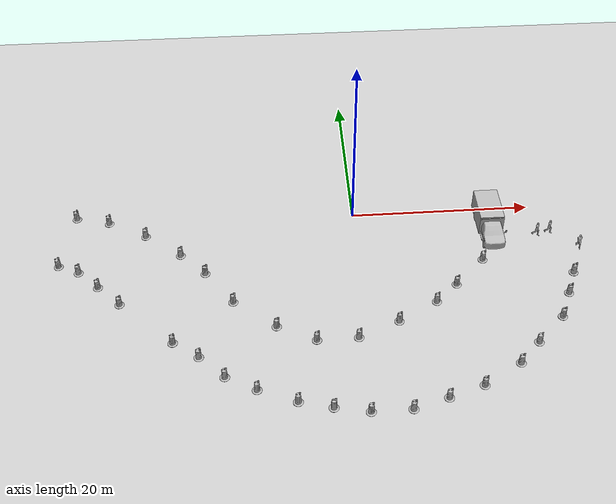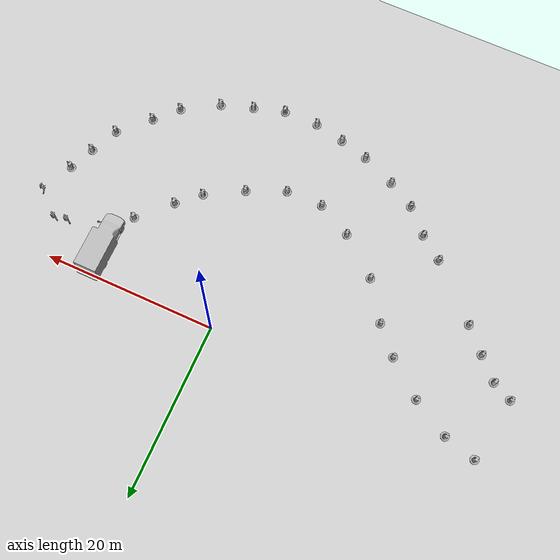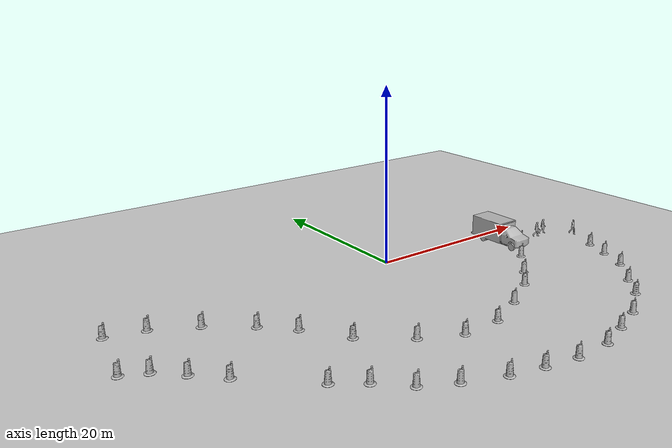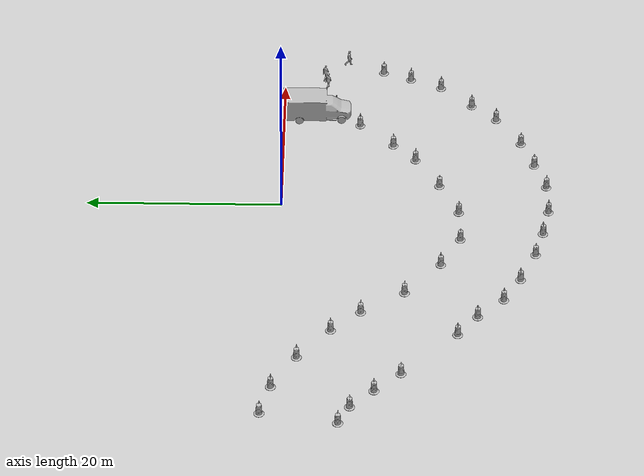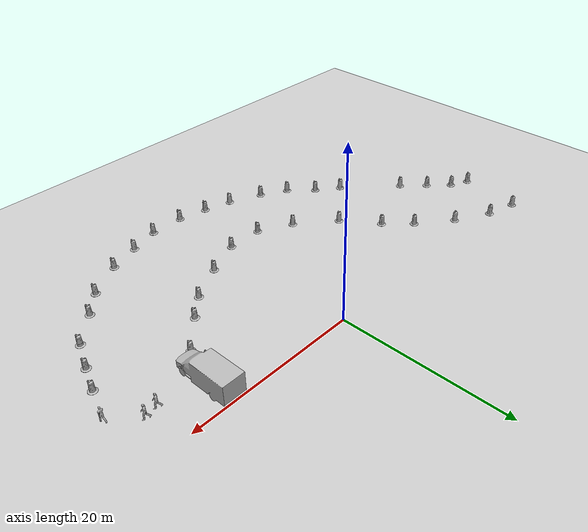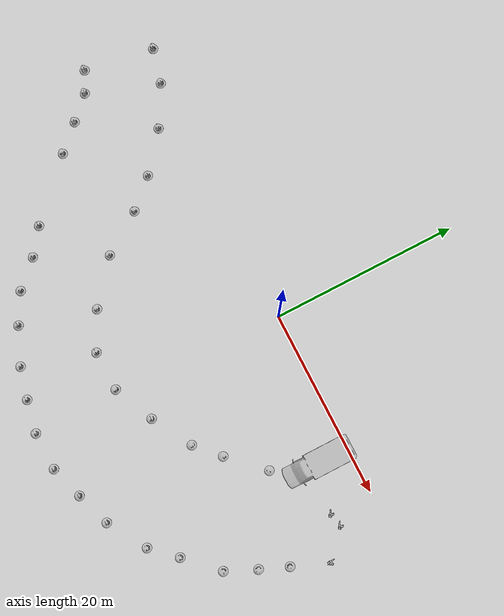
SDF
<sdf version="1.6">
 <world name="default">
  <scene>
   <sky><clouds><speed>12</speed></clouds></sky>
   <ambient>0.4 0.4 0.4 1</ambient>
   <background>0.7 0.7 0.7 1</background>
   <shadows>1</shadows>
  </scene>
  <light name="sun" type="directional">
   <pose>0 0 10 0 -0 0</pose>
   <diffuse>0.8 0.8 0.8 1</diffuse>
   <specular>0.2 0.2 0.2 1</specular>
   <attenuation>
    <range>1000</range>
    <constant>0.9</constant>
    <linear>0.01</linear>
    <quadratic>0.001</quadratic>
   </attenuation>
   <direction>-0.5 0.1 -0.9</direction>
  </light>
  <model name="ground_plane">
   <static>1</static>
   <link name="link">
    <collision name="collision">
     <geometry><plane><normal>0 0 1</normal><size>100 100</size></plane></geometry>
     <surface>
      <contact><collide_bitmask>65535</collide_bitmask></contact>
      <friction><ode><mu>100</mu><mu2>50</mu2></ode></friction>
     </surface>
    </collision>
    <visual name="visual">
     <cast_shadows>0</cast_shadows>
     <geometry><plane><normal>0 0 1</normal><size>100 100</size></plane></geometry>
     <material>
      <script><uri>file://media/materials/scripts/gazebo.material</uri><name>Gazebo/Grey</name></script>
     </material>
    </visual>
   </link>
  </model>
  <gravity>0 0 -9.8</gravity>
  <magnetic_field>6e-06 2.3e-05 -4.2e-05</magnetic_field>
  <atmosphere type="adiabatic"/>
  <physics name="default_physics" default="0" type="ode">
   <max_step_size>0.001</max_step_size>
   <real_time_factor>1</real_time_factor>
   <real_time_update_rate>1000</real_time_update_rate>
  </physics>
  <spherical_coordinates>
   <surface_model>EARTH_WGS84</surface_model>
   <latitude_deg>0</latitude_deg>
   <longitude_deg>0</longitude_deg>
   <elevation>0</elevation>
   <heading_deg>0</heading_deg>
  </spherical_coordinates>
  <model name="Construction Barrel">
   <link name="link">
    <inertial>
     <pose>0 0 0.4 0 -0 0</pose>
     <mass>500</mass>
     <inertia><ixx>51.2096</ixx><iyy>51.2096</iyy><izz>25</izz><ixy>0</ixy><ixz>0</ixz><iyz>0</iyz></inertia>
    </inertial>
    <collision name="collision">
     <geometry><mesh><uri>model://construction_barrel/meshes/construction_barrel.dae</uri></mesh></geometry>
    </collision>
    <visual name="visual">
     <geometry><mesh><uri>model://construction_barrel/meshes/construction_barrel.dae</uri></mesh></geometry>
    </visual>
   </link>
   <pose>-31.1944 1.41582 -2e-06 6e-06 -4e-06 -2.3e-05</pose>
  </model>
  <model name="Construction Barrel_0">
   <link name="link">
    <inertial>
     <pose>0 0 0.4 0 -0 0</pose>
     <mass>500</mass>
     <inertia><ixx>51.2096</ixx><iyy>51.2096</iyy><izz>25</izz><ixy>0</ixy><ixz>0</ixz><iyz>0</iyz></inertia>
    </inertial>
    <collision name="collision">
     <geometry><mesh><uri>model://construction_barrel/meshes/construction_barrel.dae</uri></mesh></geometry>
    </collision>
    <visual name="visual">
     <geometry><mesh><uri>model://construction_barrel/meshes/construction_barrel.dae</uri></mesh></geometry>
    </visual>
   </link>
   <pose>-27.4893 0.429471 -2e-06 6e-06 -4e-06 -2.2e-05</pose>
  </model>
  <model name="Construction Barrel_1">
   <link name="link">
    <inertial>
     <pose>0 0 0.4 0 -0 0</pose>
     <mass>500</mass>
     <inertia><ixx>51.2096</ixx><iyy>51.2096</iyy><izz>25</izz><ixy>0</ixy><ixz>0</ixz><iyz>0</iyz></inertia>
    </inertial>
    <collision name="collision">
     <geometry><mesh><uri>model://construction_barrel/meshes/construction_barrel.dae</uri></mesh></geometry>
    </collision>
    <visual name="visual">
     <geometry><mesh><uri>model://construction_barrel/meshes/construction_barrel.dae</uri></mesh></geometry>
    </visual>
   </link>
   <pose>-23.2751 -1.96116 -2e-06 6e-06 -4e-06 -2.1e-05</pose>
  </model>
  <model name="Construction Barrel_2">
   <link name="link">
    <inertial>
     <pose>0 0 0.4 0 -0 0</pose>
     <mass>500</mass>
     <inertia><ixx>51.2096</ixx><iyy>51.2096</iyy><izz>25</izz><ixy>0</ixy><ixz>0</ixz><iyz>0</iyz></inertia>
    </inertial>
    <collision name="collision">
     <geometry><mesh><uri>model://construction_barrel/meshes/construction_barrel.dae</uri></mesh></geometry>
    </collision>
    <visual name="visual">
     <geometry><mesh><uri>model://construction_barrel/meshes/construction_barrel.dae</uri></mesh></geometry>
    </visual>
   </link>
   <pose>-19.3142 -5.21222 -2e-06 6e-06 -4e-06 -2e-05</pose>
  </model>
  <model name="Construction Barrel_1_clone">
   <link name="link">
    <inertial>
     <pose>0 0 0.4 0 -0 0</pose>
     <mass>500</mass>
     <inertia><ixx>51.2096</ixx><iyy>51.2096</iyy><izz>25</izz><ixy>0</ixy><ixz>0</ixz><iyz>0</iyz></inertia>
    </inertial>
    <collision name="collision">
     <geometry><mesh><uri>model://construction_barrel/meshes/construction_barrel.dae</uri></mesh></geometry>
    </collision>
    <visual name="visual">
     <geometry><mesh><uri>model://construction_barrel/meshes/construction_barrel.dae</uri></mesh></geometry>
    </visual>
   </link>
   <pose>-16.5963 -8.13898 -2e-06 6e-06 -4e-06 -2e-05</pose>
  </model>
  <model name="Construction Barrel_1_clone_0">
   <link name="link">
    <inertial>
     <pose>0 0 0.4 0 -0 0</pose>
     <mass>500</mass>
     <inertia><ixx>51.2096</ixx><iyy>51.2096</iyy><izz>25</izz><ixy>0</ixy><ixz>0</ixz><iyz>0</iyz></inertia>
    </inertial>
    <collision name="collision">
     <geometry><mesh><uri>model://construction_barrel/meshes/construction_barrel.dae</uri></mesh></geometry>
    </collision>
    <visual name="visual">
     <geometry><mesh><uri>model://construction_barrel/meshes/construction_barrel.dae</uri></mesh></geometry>
    </visual>
   </link>
   <pose>-13.64 -12.4685 -2e-06 6e-06 -4e-06 -2e-05</pose>
  </model>
  <model name="Construction Barrel_1_clone_1">
   <link name="link">
    <inertial>
     <pose>0 0 0.4 0 -0 0</pose>
     <mass>500</mass>
     <inertia><ixx>51.2096</ixx><iyy>51.2096</iyy><izz>25</izz><ixy>0</ixy><ixz>0</ixz><iyz>0</iyz></inertia>
    </inertial>
    <collision name="collision">
     <geometry><mesh><uri>model://construction_barrel/meshes/construction_barrel.dae</uri></mesh></geometry>
    </collision>
    <visual name="visual">
     <geometry><mesh><uri>model://construction_barrel/meshes/construction_barrel.dae</uri></mesh></geometry>
    </visual>
   </link>
   <pose>-32.4126 -6.0217 -2e-06 6e-06 -4e-06 -1.9e-05</pose>
  </model>
  <model name="Construction Barrel_1_clone_2">
   <link name="link">
    <inertial>
     <pose>0 0 0.4 0 -0 0</pose>
     <mass>500</mass>
     <inertia><ixx>51.2096</ixx><iyy>51.2096</iyy><izz>25</izz><ixy>0</ixy><ixz>0</ixz><iyz>0</iyz></inertia>
    </inertial>
    <collision name="collision">
     <geometry><mesh><uri>model://construction_barrel/meshes/construction_barrel.dae</uri></mesh></geometry>
    </collision>
    <visual name="visual">
     <geometry><mesh><uri>model://construction_barrel/meshes/construction_barrel.dae</uri></mesh></geometry>
    </visual>
   </link>
   <pose>-30.1669 -7.12313 -2e-06 6e-06 -4e-06 -1.9e-05</pose>
  </model>
  <model name="Construction Barrel_1_clone_3">
   <link name="link">
    <inertial>
     <pose>0 0 0.4 0 -0 0</pose>
     <mass>500</mass>
     <inertia><ixx>51.2096</ixx><iyy>51.2096</iyy><izz>25</izz><ixy>0</ixy><ixz>0</ixz><iyz>0</iyz></inertia>
    </inertial>
    <collision name="collision">
     <geometry><mesh><uri>model://construction_barrel/meshes/construction_barrel.dae</uri></mesh></geometry>
    </collision>
    <visual name="visual">
     <geometry><mesh><uri>model://construction_barrel/meshes/construction_barrel.dae</uri></mesh></geometry>
    </visual>
   </link>
   <pose>-27.9078 -9.42812 -2e-06 6e-06 -4e-06 -1.9e-05</pose>
  </model>
  <model name="Construction Barrel_1_clone_4">
   <link name="link">
    <inertial>
     <pose>0 0 0.4 0 -0 0</pose>
     <mass>500</mass>
     <inertia><ixx>51.2096</ixx><iyy>51.2096</iyy><izz>25</izz><ixy>0</ixy><ixz>0</ixz><iyz>0</iyz></inertia>
    </inertial>
    <collision name="collision">
     <geometry><mesh><uri>model://construction_barrel/meshes/construction_barrel.dae</uri></mesh></geometry>
    </collision>
    <visual name="visual">
     <geometry><mesh><uri>model://construction_barrel/meshes/construction_barrel.dae</uri></mesh></geometry>
    </visual>
   </link>
   <pose>-25.4558 -12.0164 -2e-06 6e-06 -4e-06 -1.9e-05</pose>
  </model>
  <model name="Construction Barrel_1_clone_5">
   <link name="link">
    <inertial>
     <pose>0 0 0.4 0 -0 0</pose>
     <mass>500</mass>
     <inertia><ixx>51.2096</ixx><iyy>51.2096</iyy><izz>25</izz><ixy>0</ixy><ixz>0</ixz><iyz>0</iyz></inertia>
    </inertial>
    <collision name="collision">
     <geometry><mesh><uri>model://construction_barrel/meshes/construction_barrel.dae</uri></mesh></geometry>
    </collision>
    <visual name="visual">
     <geometry><mesh><uri>model://construction_barrel/meshes/construction_barrel.dae</uri></mesh></geometry>
    </visual>
   </link>
   <pose>-19.7495 -17.5857 -2e-06 6e-06 -4e-06 -1.9e-05</pose>
  </model>
  <model name="Construction Barrel_1_clone_6">
   <link name="link">
    <inertial>
     <pose>0 0 0.4 0 -0 0</pose>
     <mass>500</mass>
     <inertia><ixx>51.2096</ixx><iyy>51.2096</iyy><izz>25</izz><ixy>0</ixy><ixz>0</ixz><iyz>0</iyz></inertia>
    </inertial>
    <collision name="collision">
     <geometry><mesh><uri>model://construction_barrel/meshes/construction_barrel.dae</uri></mesh></geometry>
    </collision>
    <visual name="visual">
     <geometry><mesh><uri>model://construction_barrel/meshes/construction_barrel.dae</uri></mesh></geometry>
    </visual>
   </link>
   <pose>-17.0943 -19.6017 -2e-06 6e-06 -4e-06 -1.9e-05</pose>
  </model>
  <model name="Construction Barrel_1_clone_8">
   <link name="link">
    <inertial>
     <pose>0 0 0.4 0 -0 0</pose>
     <mass>500</mass>
     <inertia><ixx>51.2096</ixx><iyy>51.2096</iyy><izz>25</izz><ixy>0</ixy><ixz>0</ixz><iyz>0</iyz></inertia>
    </inertial>
    <collision name="collision">
     <geometry><mesh><uri>model://construction_barrel/meshes/construction_barrel.dae</uri></mesh></geometry>
    </collision>
    <visual name="visual">
     <geometry><mesh><uri>model://construction_barrel/meshes/construction_barrel.dae</uri></mesh></geometry>
    </visual>
   </link>
   <pose>-9.24704 -16.1333 -2e-06 6e-06 -4e-06 -1.9e-05</pose>
  </model>
  <model name="Construction Barrel_1_clone_7">
   <link name="link">
    <inertial>
     <pose>0 0 0.4 0 -0 0</pose>
     <mass>500</mass>
     <inertia><ixx>51.2096</ixx><iyy>51.2096</iyy><izz>25</izz><ixy>0</ixy><ixz>0</ixz><iyz>0</iyz></inertia>
    </inertial>
    <collision name="collision">
     <geometry><mesh><uri>model://construction_barrel/meshes/construction_barrel.dae</uri></mesh></geometry>
    </collision>
    <visual name="visual">
     <geometry><mesh><uri>model://construction_barrel/meshes/construction_barrel.dae</uri></mesh></geometry>
    </visual>
   </link>
   <pose>-14.5323 -22.2554 -2e-06 6e-06 -4e-06 -1.8e-05</pose>
  </model>
  <model name="Construction Barrel_1_clone_9">
   <link name="link">
    <inertial>
     <pose>0 0 0.4 0 -0 0</pose>
     <mass>500</mass>
     <inertia><ixx>51.2096</ixx><iyy>51.2096</iyy><izz>25</izz><ixy>0</ixy><ixz>0</ixz><iyz>0</iyz></inertia>
    </inertial>
    <collision name="collision">
     <geometry><mesh><uri>model://construction_barrel/meshes/construction_barrel.dae</uri></mesh></geometry>
    </collision>
    <visual name="visual">
     <geometry><mesh><uri>model://construction_barrel/meshes/construction_barrel.dae</uri></mesh></geometry>
    </visual>
   </link>
   <pose>-11.4295 -24.0213 -2e-06 6e-06 -4e-06 -2.6e-05</pose>
  </model>
  <model name="Construction Barrel_1_clone_10">
   <link name="link">
    <inertial>
     <pose>0 0 0.4 0 -0 0</pose>
     <mass>500</mass>
     <inertia><ixx>51.2096</ixx><iyy>51.2096</iyy><izz>25</izz><ixy>0</ixy><ixz>0</ixz><iyz>0</iyz></inertia>
    </inertial>
    <collision name="collision">
     <geometry><mesh><uri>model://construction_barrel/meshes/construction_barrel.dae</uri></mesh></geometry>
    </collision>
    <visual name="visual">
     <geometry><mesh><uri>model://construction_barrel/meshes/construction_barrel.dae</uri></mesh></geometry>
    </visual>
   </link>
   <pose>-7.55242 -25.6931 -2e-06 6e-06 -4e-06 -1.6e-05</pose>
  </model>
  <model name="Construction Barrel_1_clone_11">
   <link name="link">
    <inertial>
     <pose>0 0 0.4 0 -0 0</pose>
     <mass>500</mass>
     <inertia><ixx>51.2096</ixx><iyy>51.2096</iyy><izz>25</izz><ixy>0</ixy><ixz>0</ixz><iyz>0</iyz></inertia>
    </inertial>
    <collision name="collision">
     <geometry><mesh><uri>model://construction_barrel/meshes/construction_barrel.dae</uri></mesh></geometry>
    </collision>
    <visual name="visual">
     <geometry><mesh><uri>model://construction_barrel/meshes/construction_barrel.dae</uri></mesh></geometry>
    </visual>
   </link>
   <pose>-4.21758 -26.5821 -2e-06 6e-06 -4e-06 -2.6e-05</pose>
  </model>
  <model name="Construction Barrel_1_clone_12">
   <link name="link">
    <inertial>
     <pose>0 0 0.4 0 -0 0</pose>
     <mass>500</mass>
     <inertia><ixx>51.2096</ixx><iyy>51.2096</iyy><izz>25</izz><ixy>0</ixy><ixz>0</ixz><iyz>0</iyz></inertia>
    </inertial>
    <collision name="collision">
     <geometry><mesh><uri>model://construction_barrel/meshes/construction_barrel.dae</uri></mesh></geometry>
    </collision>
    <visual name="visual">
     <geometry><mesh><uri>model://construction_barrel/meshes/construction_barrel.dae</uri></mesh></geometry>
    </visual>
   </link>
   <pose>-0.751617 -27.2982 -2e-06 6e-06 -4e-06 -1.6e-05</pose>
  </model>
  <model name="Construction Barrel_1_clone_13">
   <link name="link">
    <inertial>
     <pose>0 0 0.4 0 -0 0</pose>
     <mass>500</mass>
     <inertia><ixx>51.2096</ixx><iyy>51.2096</iyy><izz>25</izz><ixy>0</ixy><ixz>0</ixz><iyz>0</iyz></inertia>
    </inertial>
    <collision name="collision">
     <geometry><mesh><uri>model://construction_barrel/meshes/construction_barrel.dae</uri></mesh></geometry>
    </collision>
    <visual name="visual">
     <geometry><mesh><uri>model://construction_barrel/meshes/construction_barrel.dae</uri></mesh></geometry>
    </visual>
   </link>
   <pose>3.3025 -27.2616 -2e-06 6e-06 -4e-06 -2.6e-05</pose>
  </model>
  <model name="Construction Barrel_1_clone_14">
   <link name="link">
    <inertial>
     <pose>0 0 0.4 0 -0 0</pose>
     <mass>500</mass>
     <inertia><ixx>51.2096</ixx><iyy>51.2096</iyy><izz>25</izz><ixy>0</ixy><ixz>0</ixz><iyz>0</iyz></inertia>
    </inertial>
    <collision name="collision">
     <geometry><mesh><uri>model://construction_barrel/meshes/construction_barrel.dae</uri></mesh></geometry>
    </collision>
    <visual name="visual">
     <geometry><mesh><uri>model://construction_barrel/meshes/construction_barrel.dae</uri></mesh></geometry>
    </visual>
   </link>
   <pose>6.87565 -26.167 -2e-06 6e-06 -4e-06 -2.6e-05</pose>
  </model>
  <model name="Construction Barrel_1_clone_15">
   <link name="link">
    <inertial>
     <pose>0 0 0.4 0 -0 0</pose>
     <mass>500</mass>
     <inertia><ixx>51.2096</ixx><iyy>51.2096</iyy><izz>25</izz><ixy>0</ixy><ixz>0</ixz><iyz>0</iyz></inertia>
    </inertial>
    <collision name="collision">
     <geometry><mesh><uri>model://construction_barrel/meshes/construction_barrel.dae</uri></mesh></geometry>
    </collision>
    <visual name="visual">
     <geometry><mesh><uri>model://construction_barrel/meshes/construction_barrel.dae</uri></mesh></geometry>
    </visual>
   </link>
   <pose>10.5338 -24.9223 -2e-06 6e-06 -4e-06 -2.6e-05</pose>
  </model>
  <model name="Construction Barrel_1_clone_16">
   <link name="link">
    <inertial>
     <pose>0 0 0.4 0 -0 0</pose>
     <mass>500</mass>
     <inertia><ixx>51.2096</ixx><iyy>51.2096</iyy><izz>25</izz><ixy>0</ixy><ixz>0</ixz><iyz>0</iyz></inertia>
    </inertial>
    <collision name="collision">
     <geometry><mesh><uri>model://construction_barrel/meshes/construction_barrel.dae</uri></mesh></geometry>
    </collision>
    <visual name="visual">
     <geometry><mesh><uri>model://construction_barrel/meshes/construction_barrel.dae</uri></mesh></geometry>
    </visual>
   </link>
   <pose>14.607 -22.4607 -2e-06 6e-06 -4e-06 -1.6e-05</pose>
  </model>
  <model name="Construction Barrel_1_clone_17">
   <link name="link">
    <inertial>
     <pose>0 0 0.4 0 -0 0</pose>
     <mass>500</mass>
     <inertia><ixx>51.2096</ixx><iyy>51.2096</iyy><izz>25</izz><ixy>0</ixy><ixz>0</ixz><iyz>0</iyz></inertia>
    </inertial>
    <collision name="collision">
     <geometry><mesh><uri>model://construction_barrel/meshes/construction_barrel.dae</uri></mesh></geometry>
    </collision>
    <visual name="visual">
     <geometry><mesh><uri>model://construction_barrel/meshes/construction_barrel.dae</uri></mesh></geometry>
    </visual>
   </link>
   <pose>16.9853 -19.9398 -2e-06 6e-06 -4e-06 -2.6e-05</pose>
  </model>
  <model name="Construction Barrel_1_clone_18">
   <link name="link">
    <inertial>
     <pose>0 0 0.4 0 -0 0</pose>
     <mass>500</mass>
     <inertia><ixx>51.2096</ixx><iyy>51.2096</iyy><izz>25</izz><ixy>0</ixy><ixz>0</ixz><iyz>0</iyz></inertia>
    </inertial>
    <collision name="collision">
     <geometry><mesh><uri>model://construction_barrel/meshes/construction_barrel.dae</uri></mesh></geometry>
    </collision>
    <visual name="visual">
     <geometry><mesh><uri>model://construction_barrel/meshes/construction_barrel.dae</uri></mesh></geometry>
    </visual>
   </link>
   <pose>20.1695 -16.7317 -2e-06 6e-06 -4e-06 -2.6e-05</pose>
  </model>
  <model name="Construction Barrel_1_clone_19">
   <link name="link">
    <inertial>
     <pose>0 0 0.4 0 -0 0</pose>
     <mass>500</mass>
     <inertia><ixx>51.2096</ixx><iyy>51.2096</iyy><izz>25</izz><ixy>0</ixy><ixz>0</ixz><iyz>0</iyz></inertia>
    </inertial>
    <collision name="collision">
     <geometry><mesh><uri>model://construction_barrel/meshes/construction_barrel.dae</uri></mesh></geometry>
    </collision>
    <visual name="visual">
     <geometry><mesh><uri>model://construction_barrel/meshes/construction_barrel.dae</uri></mesh></geometry>
    </visual>
   </link>
   <pose>21.6222 -13.5108 -2e-06 6e-06 -4e-06 -2.6e-05</pose>
  </model>
  <model name="Construction Barrel_1_clone_20">
   <link name="link">
    <inertial>
     <pose>0 0 0.4 0 -0 0</pose>
     <mass>500</mass>
     <inertia><ixx>51.2096</ixx><iyy>51.2096</iyy><izz>25</izz><ixy>0</ixy><ixz>0</ixz><iyz>0</iyz></inertia>
    </inertial>
    <collision name="collision">
     <geometry><mesh><uri>model://construction_barrel/meshes/construction_barrel.dae</uri></mesh></geometry>
    </collision>
    <visual name="visual">
     <geometry><mesh><uri>model://construction_barrel/meshes/construction_barrel.dae</uri></mesh></geometry>
    </visual>
   </link>
   <pose>-5.27894 -18.187 -2e-06 6e-06 -4e-06 -1.6e-05</pose>
  </model>
  <model name="Construction Barrel_1_clone_21">
   <link name="link">
    <inertial>
     <pose>0 0 0.4 0 -0 0</pose>
     <mass>500</mass>
     <inertia><ixx>51.2096</ixx><iyy>51.2096</iyy><izz>25</izz><ixy>0</ixy><ixz>0</ixz><iyz>0</iyz></inertia>
    </inertial>
    <collision name="collision">
     <geometry><mesh><uri>model://construction_barrel/meshes/construction_barrel.dae</uri></mesh></geometry>
    </collision>
    <visual name="visual">
     <geometry><mesh><uri>model://construction_barrel/meshes/construction_barrel.dae</uri></mesh></geometry>
    </visual>
   </link>
   <pose>-1.0121 -18.1286 -2e-06 6e-06 -4e-06 -1.6e-05</pose>
  </model>
  <model name="Construction Barrel_1_clone_22">
   <link name="link">
    <inertial>
     <pose>0 0 0.4 0 -0 0</pose>
     <mass>500</mass>
     <inertia><ixx>51.2096</ixx><iyy>51.2096</iyy><izz>25</izz><ixy>0</ixy><ixz>0</ixz><iyz>0</iyz></inertia>
    </inertial>
    <collision name="collision">
     <geometry><mesh><uri>model://construction_barrel/meshes/construction_barrel.dae</uri></mesh></geometry>
    </collision>
    <visual name="visual">
     <geometry><mesh><uri>model://construction_barrel/meshes/construction_barrel.dae</uri></mesh></geometry>
    </visual>
   </link>
   <pose>3.31236 -16.2329 -2e-06 6e-06 -4e-06 -2.6e-05</pose>
  </model>
  <model name="Construction Barrel_1_clone_23">
   <link name="link">
    <inertial>
     <pose>0 0 0.4 0 -0 0</pose>
     <mass>500</mass>
     <inertia><ixx>51.2096</ixx><iyy>51.2096</iyy><izz>25</izz><ixy>0</ixy><ixz>0</ixz><iyz>0</iyz></inertia>
    </inertial>
    <collision name="collision">
     <geometry><mesh><uri>model://construction_barrel/meshes/construction_barrel.dae</uri></mesh></geometry>
    </collision>
    <visual name="visual">
     <geometry><mesh><uri>model://construction_barrel/meshes/construction_barrel.dae</uri></mesh></geometry>
    </visual>
   </link>
   <pose>7.55099 -13.8171 -2e-06 6e-06 -4e-06 -2.6e-05</pose>
  </model>
  <model name="Construction Barrel_1_clone_24">
   <link name="link">
    <inertial>
     <pose>0 0 0.4 0 -0 0</pose>
     <mass>500</mass>
     <inertia><ixx>51.2096</ixx><iyy>51.2096</iyy><izz>25</izz><ixy>0</ixy><ixz>0</ixz><iyz>0</iyz></inertia>
    </inertial>
    <collision name="collision">
     <geometry><mesh><uri>model://construction_barrel/meshes/construction_barrel.dae</uri></mesh></geometry>
    </collision>
    <visual name="visual">
     <geometry><mesh><uri>model://construction_barrel/meshes/construction_barrel.dae</uri></mesh></geometry>
    </visual>
   </link>
   <pose>10.0192 -11.5164 -2e-06 6e-06 -4e-06 -1.6e-05</pose>
  </model>
  <model name="Construction Barrel_1_clone_25">
   <link name="link">
    <inertial>
     <pose>0 0 0.4 0 -0 0</pose>
     <mass>500</mass>
     <inertia><ixx>51.2096</ixx><iyy>51.2096</iyy><izz>25</izz><ixy>0</ixy><ixz>0</ixz><iyz>0</iyz></inertia>
    </inertial>
    <collision name="collision">
     <geometry><mesh><uri>model://construction_barrel/meshes/construction_barrel.dae</uri></mesh></geometry>
    </collision>
    <visual name="visual">
     <geometry><mesh><uri>model://construction_barrel/meshes/construction_barrel.dae</uri></mesh></geometry>
    </visual>
   </link>
   <pose>13.4328 -8.03297 -2e-06 6e-06 -4e-06 -1.6e-05</pose>
  </model>
  <model name="Construction Barrel_1_clone_26">
   <link name="link">
    <inertial>
     <pose>0 0 0.4 0 -0 0</pose>
     <mass>500</mass>
     <inertia><ixx>51.2096</ixx><iyy>51.2096</iyy><izz>25</izz><ixy>0</ixy><ixz>0</ixz><iyz>0</iyz></inertia>
    </inertial>
    <collision name="collision">
     <geometry><mesh><uri>model://construction_barrel/meshes/construction_barrel.dae</uri></mesh></geometry>
    </collision>
    <visual name="visual">
     <geometry><mesh><uri>model://construction_barrel/meshes/construction_barrel.dae</uri></mesh></geometry>
    </visual>
   </link>
   <pose>22.8312 -10.5893 -2e-06 6e-06 -4e-06 -2.6e-05</pose>
  </model>
  <model name="ambulance">
   <static>1</static>
   <link name="link">
    <collision name="collision">
     <geometry>
      <mesh><scale>0.0254 0.0254 0.0254</scale><uri>model://ambulance/meshes/ambulance.obj</uri></mesh>
     </geometry>
    </collision>
    <visual name="visual">
     <geometry>
      <mesh><scale>0.0254 0.0254 0.0254</scale><uri>model://ambulance/meshes/ambulance.obj</uri></mesh>
     </geometry>
    </visual>
   </link>
   <pose>14.9619 -3.21154 0 0 -0 0</pose>
  </model>
  <model name="person_walking">
   <link name="link">
    <inertial>
     <pose>0 0 0.95 0 -0 0</pose>
     <mass>80</mass>
     <inertia><ixx>27.82</ixx><ixy>0</ixy><ixz>0</ixz><iyy>24.88</iyy><iyz>0</iyz><izz>4.57</izz></inertia>
    </inertial>
    <collision name="bottom">
     <pose>0 0 0.01 0 -0 0</pose>
     <geometry><box><size>0.35 0.75 0.02</size></box></geometry>
    </collision>
    <collision name="person">
     <pose>0 0 -0.02 0 -0 0</pose>
     <geometry><mesh><uri>model://person_walking/meshes/walking.dae</uri></mesh></geometry>
    </collision>
    <visual name="visual">
     <pose>0 0 -0.02 0 -0 0</pose>
     <geometry><mesh><uri>model://person_walking/meshes/walking.dae</uri></mesh></geometry>
    </visual>
   </link>
   <pose>20.0724 -4.5485 -1e-06 2e-06 -1e-06 0.898212</pose>
  </model>
  <model name="person_walking_0">
   <link name="link">
    <inertial>
     <pose>0 0 0.95 0 -0 0</pose>
     <mass>80</mass>
     <inertia><ixx>27.82</ixx><ixy>0</ixy><ixz>0</ixz><iyy>24.88</iyy><iyz>0</iyz><izz>4.57</izz></inertia>
    </inertial>
    <collision name="bottom">
     <pose>0 0 0.01 0 -0 0</pose>
     <geometry><box><size>0.35 0.75 0.02</size></box></geometry>
    </collision>
    <collision name="person">
     <pose>0 0 -0.02 0 -0 0</pose>
     <geometry><mesh><uri>model://person_walking/meshes/walking.dae</uri></mesh></geometry>
    </collision>
    <visual name="visual">
     <pose>0 0 -0.02 0 -0 0</pose>
     <geometry><mesh><uri>model://person_walking/meshes/walking.dae</uri></mesh></geometry>
    </visual>
   </link>
   <pose>21.5406 -4.25222 -1e-06 2e-06 -0 0.942493</pose>
  </model>
  <model name="person_walking_1">
   <link name="link">
    <inertial>
     <pose>0 0 0.95 0 -0 0</pose>
     <mass>80</mass>
     <inertia><ixx>27.82</ixx><ixy>0</ixy><ixz>0</ixz><iyy>24.88</iyy><iyz>0</iyz><izz>4.57</izz></inertia>
    </inertial>
    <collision name="bottom">
     <pose>0 0 0.01 0 -0 0</pose>
     <geometry><box><size>0.35 0.75 0.02</size></box></geometry>
    </collision>
    <collision name="person">
     <pose>0 0 -0.02 0 -0 0</pose>
     <geometry><mesh><uri>model://person_walking/meshes/walking.dae</uri></mesh></geometry>
    </collision>
    <visual name="visual">
     <pose>0 0 -0.02 0 -0 0</pose>
     <geometry><mesh><uri>model://person_walking/meshes/walking.dae</uri></mesh></geometry>
    </visual>
   </link>
   <pose>24.2921 -6.77072 0 0 -0 0.000143</pose>
  </model>
 </world>
</sdf>
